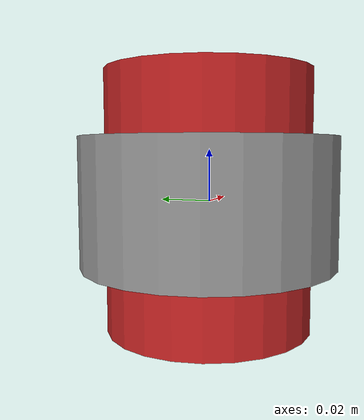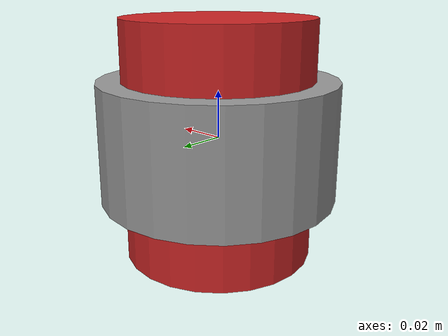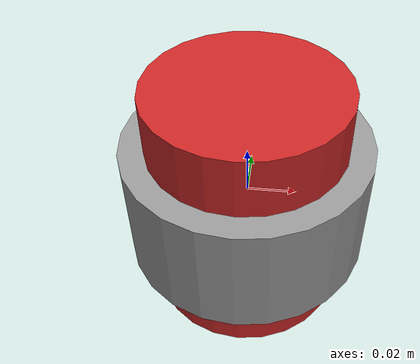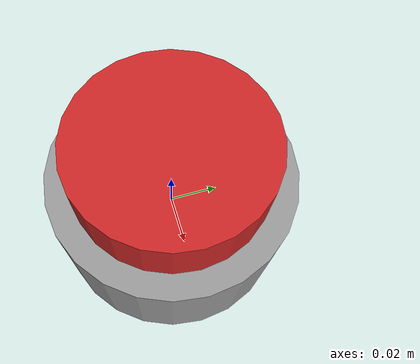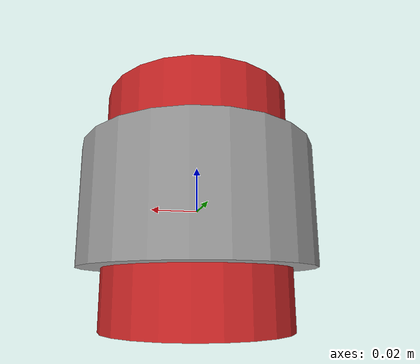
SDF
<?xml version="1.0" ?>
<sdf version="1.6">
  <model name="lazDar">
    <link name="laz_base">
      <pose>0 0 0 0 0 0</pose>
      <visual name="visual">
        <geometry>
          <cylinder>
            <radius>0.05</radius>
            <length>0.05</length>
          </cylinder>
        </geometry>
        <material>
          <script>
            <uri>file://media/materials/scripts/gazebo.material</uri>
            <name>Gazebo/Grey</name>
          </script>
        </material>
      </visual>
      <collision name="collision">
        <geometry>
          <cylinder>
            <radius>0.05</radius>
            <length>0.05</length>
          </cylinder>
        </geometry>
      </collision>
      <inertial>
        <mass>0.1</mass>
        <inertia>
          <ixx>8.333333333333334e-05</ixx>
          <ixy>0</ixy>
          <ixz>0</ixz>
          <iyy>8.333333333333334e-05</iyy>
          <iyz>0</iyz>
          <izz>0.00016666666666666666</izz>
        </inertia>
      </inertial>
    </link>
    <link name="laz_rot">
      <pose>0 0 0 0 0 0</pose>
      <visual name="visual">
        <geometry>
          <cylinder>
            <radius>0.04</radius>
            <length>0.1</length>
          </cylinder>
        </geometry>
        <material>
          <script>
            <uri>file://media/materials/scripts/gazebo.material</uri>
            <name>Gazebo/RedGlow</name>
          </script>
        </material>
      </visual>
      <collision name="collision">
        <geometry>
          <cylinder>
            <radius>0.04</radius>
            <length>0.1</length>
          </cylinder>
        </geometry>
      </collision>
      <inertial>
        <mass>0.1</mass>
        <inertia>
          <ixx>0.0003466666666666667</ixx>
          <ixy>0</ixy>
          <ixz>0</ixz>
          <iyy>0.0003466666666666667</iyy>
          <iyz>0</iyz>
          <izz>0.0006933333333333334</izz>
        </inertia>
      </inertial>
    </link>
    <joint name="lazRot" type="continuous">
      <parent>laz_base</parent>
      <child>laz_rot</child>
      <axis>
        <xyz>0 0 1</xyz>
      </axis>
      <origin>
        <xyz>0 0 0.025</xyz>
      </origin>
      <dynamics>
        <friction>
          <ode>
            <mu>0.1</mu>
          </ode>
        </friction>
      </dynamics>
    </joint>
  </model>
</sdf>
